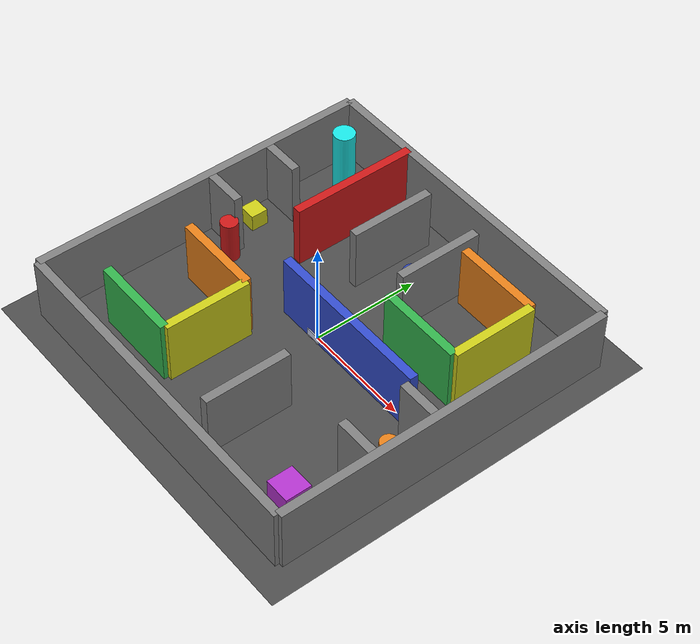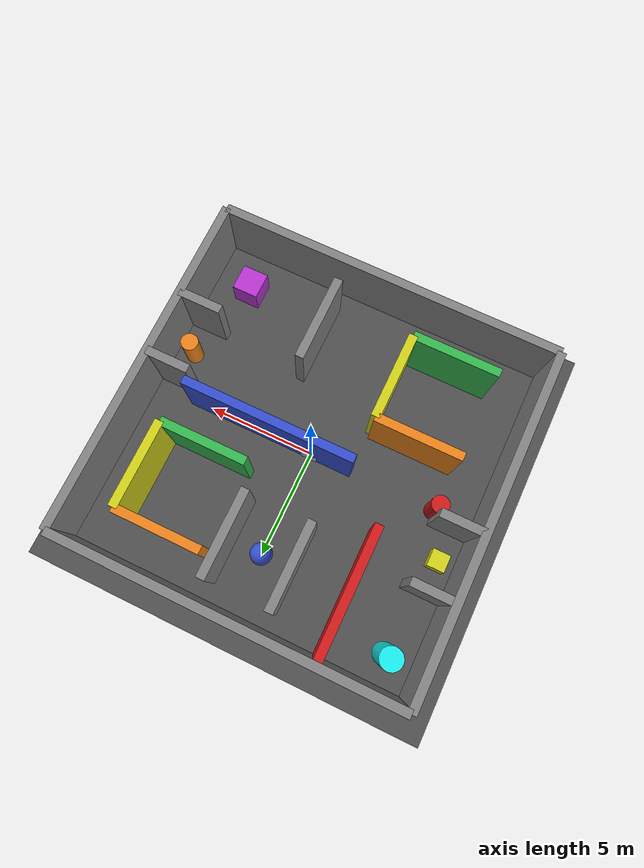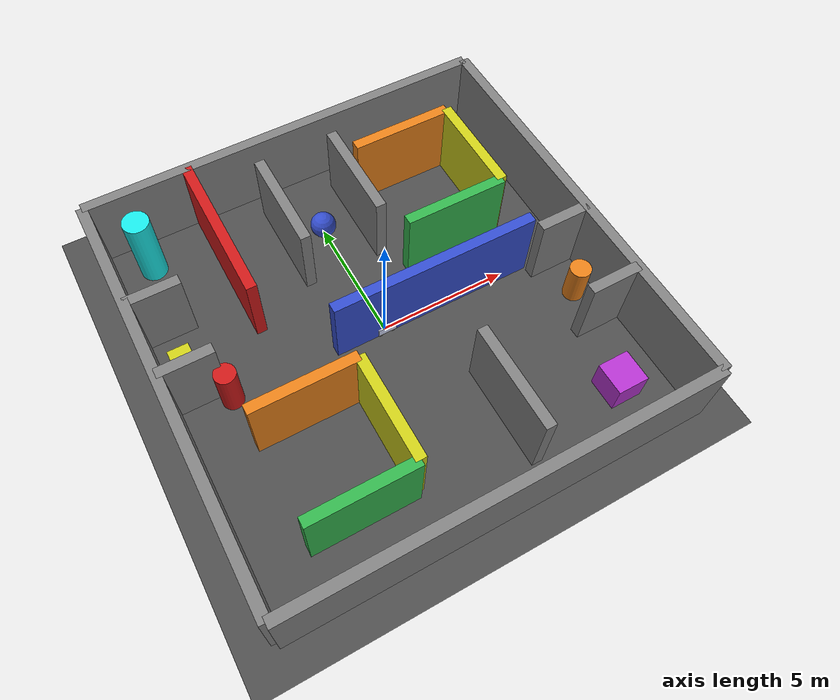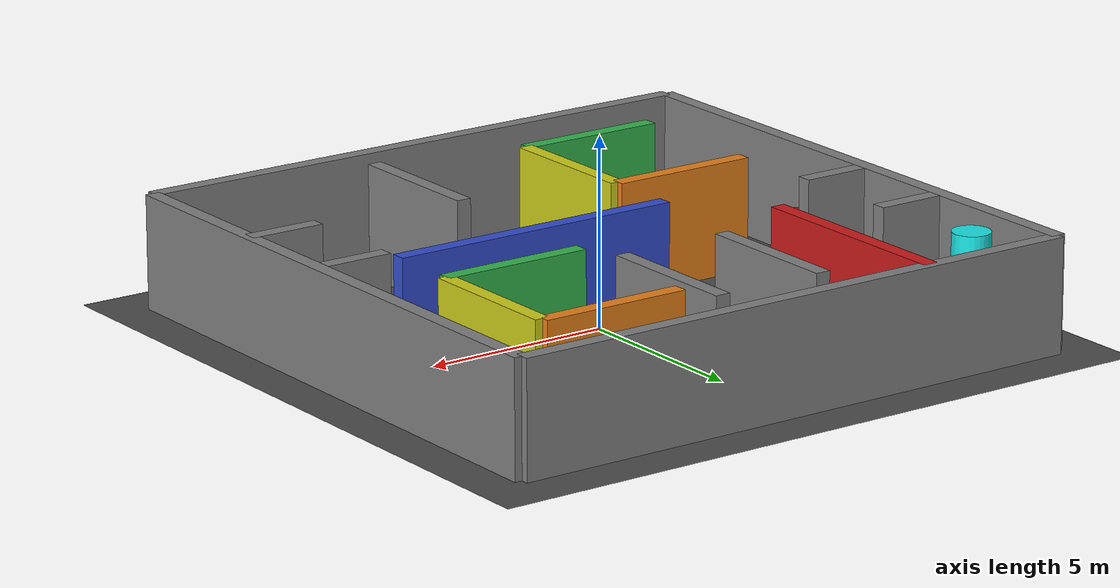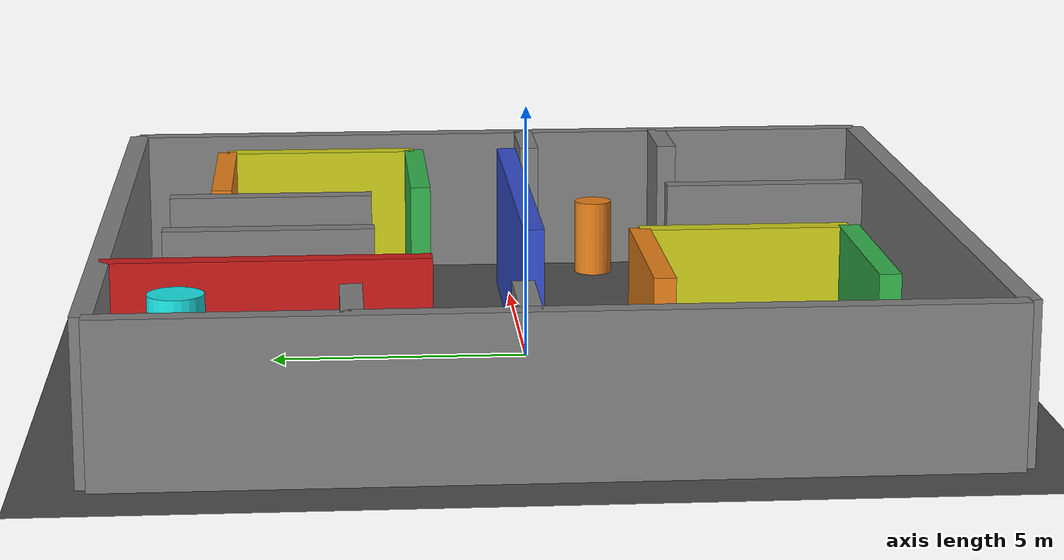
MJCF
<mujoco model="minav_maze_env">

  <compiler angle="radian"/>
  <option timestep="0.004" integrator="RK4" gravity="0 0 -9.81"/>

  <default>
    <joint damping="1.0" armature="0.01"/>
    <geom friction="1.2 0.01 0.001" condim="4" solimp="0.9 0.95 0.001" solref="0.02 1"/>
  </default>

  <!-- Include the base robot model -->
  <include file="../../ranger_mini_v3.xml"/>

  <asset>
    <!-- Basic structural materials -->
    <material name="maze_wall"   rgba="0.5 0.5 0.5 1"/>
    <material name="maze_floor"  rgba="0.2 0.2 0.2 1"/>

    <!-- Distinctive Colors for visual aliasing / corridors -->
    <material name="mat_green"  rgba="0.2 0.7 0.3 1"/>
    <material name="mat_blue"   rgba="0.2 0.3 0.8 1"/>
    <material name="mat_yellow" rgba="0.8 0.8 0.1 1"/>
    <material name="mat_orange" rgba="0.9 0.5 0.1 1"/>
    <material name="mat_red"    rgba="0.8 0.1 0.1 1"/>

    <!-- Landmark Colors -->
    <material name="mat_cyan"   rgba="0.1 0.9 0.9 1"/>
    <material name="mat_purple" rgba="0.7 0.2 0.8 1"/>
  </asset>

  <worldbody>
    <!-- ── Lighting ────────────────────────────────────────────────────── -->
    <!-- Soft, relatively uniform lighting to prevent extreme shadows but give depth -->
    <light name="fill1" pos="0 0 10" dir="0 0 -1" diffuse="0.7 0.7 0.7" castshadow="false"/>
    <light name="fill2" pos="-5 -5 6" dir="1 1 -1" diffuse="0.4 0.4 0.4" castshadow="false"/>
    <light name="fill3" pos="5 5 6" dir="-1 -1 -1" diffuse="0.4 0.4 0.4" castshadow="false"/>

    <!-- ── Floor ───────────────────────────────────────────────────────── -->
    <geom name="maze_floor" type="plane" size="8 8 0.1" pos="0 0 0" material="maze_floor" contype="1" conaffinity="1"/>

    <!-- ── Perimeter walls (16x16 meters) ──────────────────────────────── -->
    <geom name="wall_n" type="box" size="8 0.2 1.5" pos="0  8 1.5" material="maze_wall" contype="1" conaffinity="1"/>
    <geom name="wall_s" type="box" size="8 0.2 1.5" pos="0 -8 1.5" material="maze_wall" contype="1" conaffinity="1"/>
    <geom name="wall_e" type="box" size="0.2 8 1.5" pos=" 8 0 1.5" material="maze_wall" contype="1" conaffinity="1"/>
    <geom name="wall_w" type="box" size="0.2 8 1.5" pos="-8 0 1.5" material="maze_wall" contype="1" conaffinity="1"/>

    <!-- ── Internal Maze Geometry ──────────────────────────────────────── -->

    <!-- ALIASED STRUCTURE 1 (Bottom-Left) -->
    <!-- U-Shape opening West. Green -> Yellow -> Orange -->
    <geom name="a1_green"  type="box" size="2 0.2 1.5" pos="-4 -6 1.5" material="mat_green"/>
    <geom name="a1_yellow" type="box" size="0.2 2 1.5" pos="-2 -4 1.5" material="mat_yellow"/>
    <geom name="a1_orange" type="box" size="2 0.2 1.5" pos="-4 -2 1.5" material="mat_orange"/>

    <!-- ALIASED STRUCTURE 2 (Top-Right) -->
    <!-- Exact same U-Shape opening West, but shifted to Top-Right -->
    <geom name="a2_green"  type="box" size="2 0.2 1.5" pos="4 2 1.5" material="mat_green"/>
    <geom name="a2_yellow" type="box" size="0.2 2 1.5" pos="6 4 1.5" material="mat_yellow"/>
    <geom name="a2_orange" type="box" size="2 0.2 1.5" pos="4 6 1.5" material="mat_orange"/>

    <!-- DIVIDER 1: Central Horizontal (Blue) -->
    <!-- Creates a long corridor in the middle of the map -->
    <geom name="div1_blue" type="box" size="4 0.2 1.5" pos="2 0 1.5" material="mat_blue"/>

    <!-- DIVIDER 2: Top-Left Vertical (Red) -->
    <!-- Blocks direct vertical movement on the left, forcing S-curves -->
    <geom name="div2_red"  type="box" size="0.2 3 1.5" pos="-4 5 1.5" material="mat_red"/>

    <!-- DIVIDER 3: Bottom-Right Vertical (Dark Gray Wall Mat) -->
    <!-- Creates a narrow dead-end or tight turn on the bottom right -->
    <geom name="div3_gray" type="box" size="0.2 2 1.5" pos="2 -5 1.5" material="maze_wall"/>

    <!-- ── Landmarks ───────────────────────────────────────────────────── -->

    <!-- Landmark 1: Cyan Cylinder (Top Left corner) -->
    <geom name="lm_cyan"   type="cylinder" size="0.5 1.5" pos="-6.5 6.5 1.5" material="mat_cyan"/>

    <!-- Landmark 2: Purple Box (Bottom Right corridor) -->
    <geom name="lm_purple" type="box" size="0.6 0.6 0.6" pos="6 -6 0.6" material="mat_purple"/>

    <!-- Landmark 3: Red Cone (Center Left intersection) -->
    <geom name="lm_red"    type="cylinder" size="0.4 1.0" pos="-6 0 1.0" material="mat_red"/>

    <!-- ── Search Cells & Hidden Objects ───────────────────────────────── -->

    <!-- Cell 1 (Top Center) -->
    <geom name="cell1_wall_l" type="box" size="0.2 2.0 1.5" pos="-1.5 5 1.5" material="maze_wall"/>
    <geom name="cell1_wall_r" type="box" size="0.2 2.0 1.5" pos="1.5 5 1.5" material="maze_wall"/>
    <geom name="cell1_obj"    type="sphere" size="0.5" pos="0 5 0.5" material="mat_blue"/>

    <!-- Cell 2 (West Wall Enclave) -->
    <geom name="cell2_wall_t" type="box" size="1.0 0.2 1.5" pos="-7 3.5 1.5" material="maze_wall"/>
    <geom name="cell2_wall_b" type="box" size="1.0 0.2 1.5" pos="-7 0.5 1.5" material="maze_wall"/>
    <geom name="cell2_obj"    type="box" size="0.4 0.4 0.4" pos="-7 2 0.4" material="mat_yellow"/>

    <!-- Cell 3 (East Wall Enclave) -->
    <geom name="cell3_wall_t" type="box" size="1.0 0.2 1.5" pos="7 -0.5 1.5" material="maze_wall"/>
    <geom name="cell3_wall_b" type="box" size="1.0 0.2 1.5" pos="7 -3.5 1.5" material="maze_wall"/>
    <geom name="cell3_obj"    type="cylinder" size="0.4 0.8" pos="7 -2 0.8" material="mat_orange"/>

  </worldbody>
</mujoco>

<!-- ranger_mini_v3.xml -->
<mujoco model="ranger_mini_v3">

  <compiler angle="radian"/>

  <!-- Physics: small timestep for wheel-ground stability -->
  <option timestep="0.004" integrator="RK4" gravity="0 0 -9.81"/>

  <default>
    <joint damping="1.0" armature="0.01"/>
    <!-- Good tire-like friction with proper contact parameters -->
    <geom friction="1.2 0.005 0.0001" condim="4" solimp="0.95 0.99 0.001" solref="0.01 1"/>
  </default>

  <asset>
    <texture name="floor_tex" type="2d" builtin="checker"
             rgb1="0.25 0.25 0.25" rgb2="0.35 0.35 0.35" width="512" height="512"/>
    <material name="floor_mat"    texture="floor_tex" texrepeat="10 10"/>

    <material name="chassis_mat"  rgba="0.79 0.82 0.93 1"/>
    <material name="wheel_mat"    rgba="0.12 0.12 0.12 1"/>
    <material name="steering_mat" rgba="0.30 0.30 0.35 1"/>
    <material name="cam_mat"      rgba="0.9 0.2 0.1 1"/>
  </asset>

  <worldbody>
    <!-- Ground plane -->
    <geom name="floor" type="plane" size="30 30 0.1"
          material="floor_mat" friction="1.2 0.005 0.0001" contype="1" conaffinity="3"/>

    <!-- Lighting -->
    <light name="sun" pos="0 0 8" dir="0 0 -1" diffuse="0.85 0.85 0.85" specular="0.2 0.2 0.2" castshadow="true"/>
    <light name="fill" pos="-3 3 4" dir="0.4 -0.5 -0.8" diffuse="0.3 0.3 0.3" specular="0.0 0.0 0.0" castshadow="false"/>

    <!-- ======================= RANGER MINI V3 ======================= -->
    <body name="base_link" pos="0 0 0.2775">

      <!-- 6-DOF free joint so the robot moves in the world -->
      <freejoint name="root"/>

      <!-- Chassis inertia (Spec: 75 kg, 720x500x345 mm box) -->
      <inertial pos="-0.02 -0.003 0.05" mass="43"
                diaginertia="1.3 1.3 1.3"/>

      <!-- Chassis collision box (Spec: 720x500x345 mm, half-sizes 0.36x0.25x0.1725) -->
      <geom name="chassis_box" type="box" size="0.36 0.25 0.1725"
            pos="0 0 0" material="chassis_mat" contype="1" conaffinity="1"/>

      <!-- IMU site (at base centre) -->
      <site name="imu_site" pos="0 0 0" size="0.01"/>

      <!-- ── Front RGB Camera ───────────────────────────────────────────── -->
      <body name="camera_link" pos="0.36 0 0.10">
        <geom name="cam_marker" type="box" size="0.015 0.02 0.015" material="cam_mat" contype="0" conaffinity="0"/>
        <camera name="front_cam" fovy="80" xyaxes="0 -1 0 0 0 1"/>
      </body>

      <!-- ── LiDAR mount (simulated as depth camera) ───────────────────── -->
      <body name="lidar_link" pos="0.36 0 0.20">
        <geom name="lidar_marker" type="cylinder" size="0.03 0.02" material="cam_mat" contype="0" conaffinity="0"/>
        <!-- Narrow vertical FOV to avoid seeing floor, wide aspect ratio for horizontal sweep -->
        <camera name="lidar_cam" fovy="15" xyaxes="0 -1 0 0 0 1"/>
      </body>

      <!-- ═══════════ FRONT-LEFT CORNER ═════════════════════════════════
           Steering mount: x=+0.2105  y=+0.300  z=-0.1125
      -->
      <body name="fl_suspension_link" pos="0.247 0.182 0.0">
        <inertial pos="0 0 0" mass="2" diaginertia="0.01 0.01 0.01"/>
        <joint name="fl_suspension_joint" type="slide" axis="0 0 1" stiffness="10500" damping="500"/>
        <body name="fl_steering_wheel_link" pos="0 0 -0.1775">
          <joint name="fl_steering_joint" type="hinge" axis="0 0 -1"
                 limited="false"
                 damping="5.0" armature="1.0"/>
          <inertial pos="0 0 -0.04" mass="1"
                    diaginertia="0.01 0.01 0.01"/>
          <geom name="fl_knuckle" type="cylinder" size="0.025 0.06"
                pos="0 0 -0.06" material="steering_mat"
                contype="0" conaffinity="0"/>

          <!-- Wheel: steering pivot passes through wheel center for 0 scrub radius -->
          <body name="fl_wheel_link" pos="0 0 0">
            <joint name="fl_wheel" type="hinge" axis="0 1 0"
                   limited="false" damping="0.5"/>
            <inertial pos="0 0 0" mass="5"
                      diaginertia="0.04 0.07 0.04"/>
            <!-- Spec: radius 0.165, half-width 0.05 -->
            <geom name="fl_wheel_col" type="cylinder" size="0.100 0.05"
                  euler="1.5708 0 0" material="wheel_mat"
                  contype="2" conaffinity="2"/>
          </body>
        </body>
      </body>

      <!-- ═══════════ FRONT-RIGHT CORNER ════════════════════════════════
           Steering mount: x=+0.2105  y=-0.300  z=-0.1125
      -->
      <body name="fr_suspension_link" pos="0.247 -0.182 0.0">
        <inertial pos="0 0 0" mass="2" diaginertia="0.01 0.01 0.01"/>
        <joint name="fr_suspension_joint" type="slide" axis="0 0 1" stiffness="10500" damping="500"/>
        <body name="fr_steering_wheel_link" pos="0 0 -0.1775">
          <joint name="fr_steering_joint" type="hinge" axis="0 0 -1"
                 limited="false"
                 damping="5.0" armature="1.0"/>
          <inertial pos="0 0 -0.04" mass="1"
                    diaginertia="0.01 0.01 0.01"/>
          <geom name="fr_knuckle" type="cylinder" size="0.025 0.06"
                pos="0 0 -0.06" material="steering_mat"
                contype="0" conaffinity="0"/>

          <body name="fr_wheel_link" pos="0 0 0">
            <joint name="fr_wheel" type="hinge" axis="0 1 0"
                   limited="false" damping="0.5"/>
            <inertial pos="0 0 0" mass="5"
                      diaginertia="0.04 0.07 0.04"/>
            <geom name="fr_wheel_col" type="cylinder" size="0.100 0.05"
                  euler="1.5708 0 0" material="wheel_mat"
                  contype="2" conaffinity="2"/>
          </body>
        </body>
      </body>

      <!-- ═══════════ REAR-LEFT CORNER ══════════════════════════════════
           Steering mount: x=-0.2105  y=+0.300  z=-0.1125
      -->
      <body name="rl_suspension_link" pos="-0.247 0.182 0.0">
        <inertial pos="0 0 0" mass="2" diaginertia="0.01 0.01 0.01"/>
        <joint name="rl_suspension_joint" type="slide" axis="0 0 1" stiffness="10500" damping="500"/>
        <body name="rl_steering_wheel_link" pos="0 0 -0.1775">
          <joint name="rl_steering_joint" type="hinge" axis="0 0 -1"
                 limited="false"
                 damping="5.0" armature="1.0"/>
          <inertial pos="0 0 -0.04" mass="1"
                    diaginertia="0.01 0.01 0.01"/>
          <geom name="rl_knuckle" type="cylinder" size="0.025 0.06"
                pos="0 0 -0.06" material="steering_mat"
                contype="0" conaffinity="0"/>

          <body name="rl_wheel_link" pos="0 0 0">
            <joint name="rl_wheel" type="hinge" axis="0 1 0"
                   limited="false" damping="0.5"/>
            <inertial pos="0 0 0" mass="5"
                      diaginertia="0.04 0.07 0.04"/>
            <geom name="rl_wheel_col" type="cylinder" size="0.100 0.05"
                  euler="1.5708 0 0" material="wheel_mat"
                  contype="2" conaffinity="2"/>
          </body>
        </body>
      </body>

      <!-- ═══════════ REAR-RIGHT CORNER ═════════════════════════════════
           Steering mount: x=-0.2105  y=-0.300  z=-0.1125
      -->
      <body name="rr_suspension_link" pos="-0.247 -0.182 0.0">
        <inertial pos="0 0 0" mass="2" diaginertia="0.01 0.01 0.01"/>
        <joint name="rr_suspension_joint" type="slide" axis="0 0 1" stiffness="10500" damping="500"/>
        <body name="rr_steering_wheel_link" pos="0 0 -0.1775">
          <joint name="rr_steering_joint" type="hinge" axis="0 0 -1"
                 limited="false"
                 damping="5.0" armature="1.0"/>
          <inertial pos="0 0 -0.04" mass="1"
                    diaginertia="0.01 0.01 0.01"/>
          <geom name="rr_knuckle" type="cylinder" size="0.025 0.06"
                pos="0 0 -0.06" material="steering_mat"
                contype="0" conaffinity="0"/>

          <body name="rr_wheel_link" pos="0 0 0">
            <joint name="rr_wheel" type="hinge" axis="0 1 0"
                   limited="false" damping="0.5"/>
            <inertial pos="0 0 0" mass="5"
                      diaginertia="0.04 0.07 0.04"/>
            <geom name="rr_wheel_col" type="cylinder" size="0.100 0.05"
                  euler="1.5708 0 0" material="wheel_mat"
                  contype="2" conaffinity="2"/>
          </body>
        </body>
      </body>

    </body> <!-- /base_link -->

  </worldbody>

  <actuator>
    <!-- Steering position actuators (100W harmonic drives) -->
    <position name="act_fl_steer" joint="fl_steering_joint" kp="50" forcerange="-20 20" ctrlrange="-3.14159 3.14159"/>
    <position name="act_fr_steer" joint="fr_steering_joint" kp="50" forcerange="-20 20" ctrlrange="-3.14159 3.14159"/>
    <position name="act_rl_steer" joint="rl_steering_joint" kp="50" forcerange="-20 20" ctrlrange="-3.14159 3.14159"/>
    <position name="act_rr_steer" joint="rr_steering_joint" kp="50" forcerange="-20 20" ctrlrange="-3.14159 3.14159"/>

    <!-- Drive velocity actuators (350W brushless motors) -->
    <velocity name="act_fl_drive" joint="fl_wheel" kv="50" forcerange="-20 20" ctrlrange="-20 20"/>
    <velocity name="act_fr_drive" joint="fr_wheel" kv="50" forcerange="-20 20" ctrlrange="-20 20"/>
    <velocity name="act_rl_drive" joint="rl_wheel" kv="50" forcerange="-20 20" ctrlrange="-20 20"/>
    <velocity name="act_rr_drive" joint="rr_wheel" kv="50" forcerange="-20 20" ctrlrange="-20 20"/>
  </actuator>

  <!-- ═══════════════════════════════════════════════════════════════════════
       SENSORS
  ═══════════════════════════════════════════════════════════════════════════ -->
  <sensor>
    <accelerometer name="imu_accel" site="imu_site"/>
    <gyro name="imu_gyro" site="imu_site"/>
    <jointvel name="fl_wheel_vel" joint="fl_wheel"/>
    <jointvel name="fr_wheel_vel" joint="fr_wheel"/>
    <jointvel name="rl_wheel_vel" joint="rl_wheel"/>
    <jointvel name="rr_wheel_vel" joint="rr_wheel"/>
    <jointpos name="fl_steer_pos" joint="fl_steering_joint"/>
    <jointpos name="fr_steer_pos" joint="fr_steering_joint"/>
    <jointpos name="rl_steer_pos" joint="rl_steering_joint"/>
    <jointpos name="rr_steer_pos" joint="rr_steering_joint"/>
  </sensor>

</mujoco>
